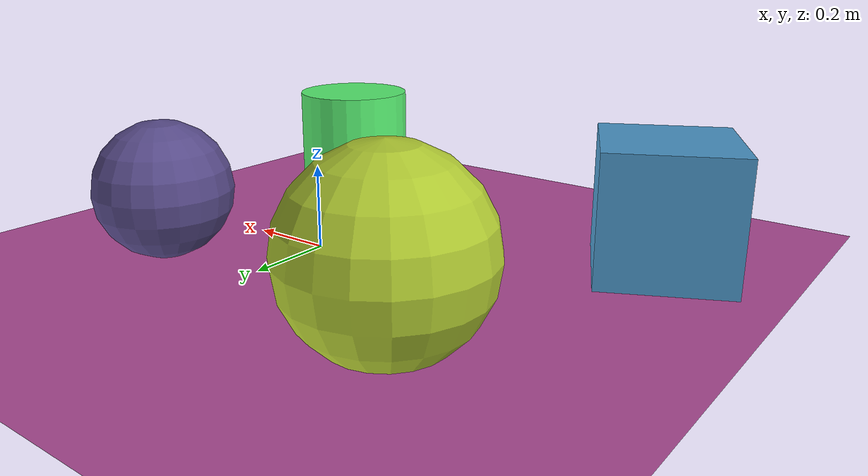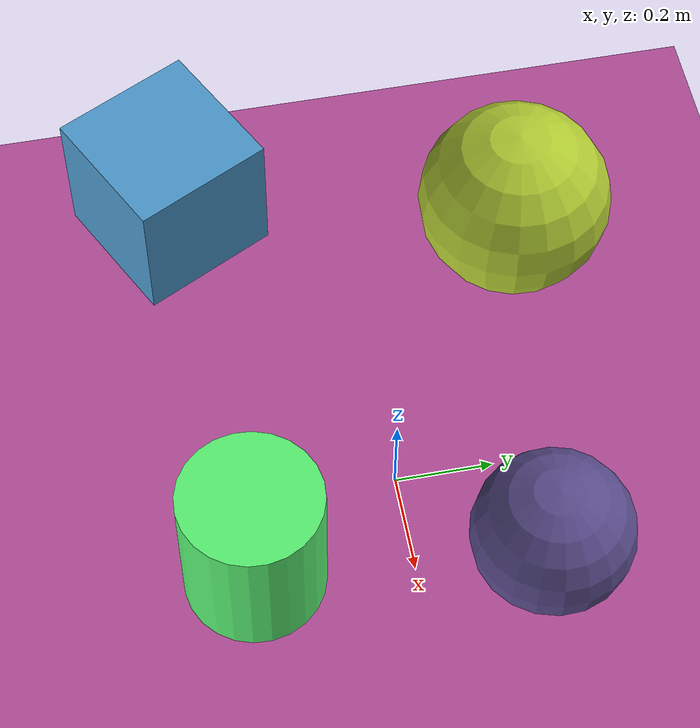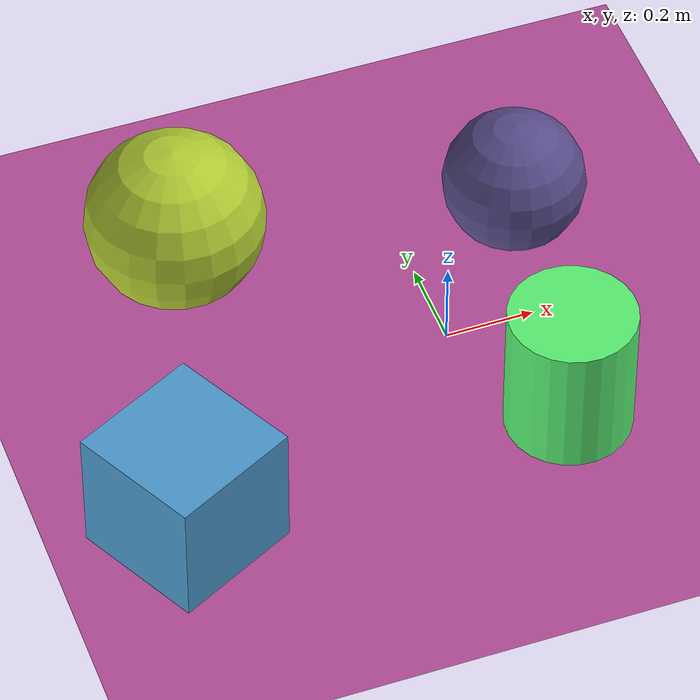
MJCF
<mujoco>
   <asset>
<texture type="skybox" builtin="gradient" rgb1="0.3 0.1 0.2" rgb2="0.1 0.6 0.1" width="256" height="256"/>
<texture name="flat_0" builtin="flat" rgb1="0.7 0.8 0.2" rgb2="0.7 0.8 0.2"  width="200" height="200"/>
<texture name="flat_1" builtin="flat" rgb1="0.3 0.6 0.8" rgb2="0.3 0.6 0.8"  width="200" height="200"/>
<texture name="gradient_2" builtin="gradient" rgb1="0.0 0.2 0.1" rgb2="0.7 0.4 1.0" width="200" height="200"/>
<texture name="checker_3" builtin="checker" rgb1="0.4 1.0 0.2" rgb2="0.3 0.9 0.7" width="200" height="200"/><material name="flat_0_mat" reflectance="0" texture="flat_0" texuniform="true"/>
<material name="flat_1_mat" reflectance="0" texture="flat_1" texuniform="true"/>
<material name="gradient_2_mat" reflectance="0" texture="gradient_2" texuniform="true"/>
<material name="checker_3_mat" reflectance="0" texrepeat="7 7" texture="checker_3" texuniform="false" />
   </asset>

   <worldbody>
      <light diffuse=".9 .9 .9" pos="0 0 3" dir="0 0 -1"/>
     <geom type="plane" size="1 1 0.1" rgba="0.7 0.3 0.6 1"/>
<geom type="sphere" pos="-0.5 0.35 0.2" size="0.2 0.2 0.2" material="flat_0_mat" euler="0 0 78" />
<geom type="box" pos="-0.71 -0.35 0.15" size="0.15 0.15 0.15" material="flat_1_mat" euler="0 0 27" />
<geom type="sphere" pos="0.25 0.25 0.16" size="0.16 0.16 0.16" material="gradient_2_mat" euler="0 0 29" />
<geom type="cylinder" pos="0.16 -0.31 0.16" size="0.14 0.16 0.16" material="checker_3_mat" euler="0 0 19" /><camera euler="60 0 180" fovy="60" name="camera1" pos="-0.2 -1.5 1"></camera>   </worldbody>
</mujoco>
